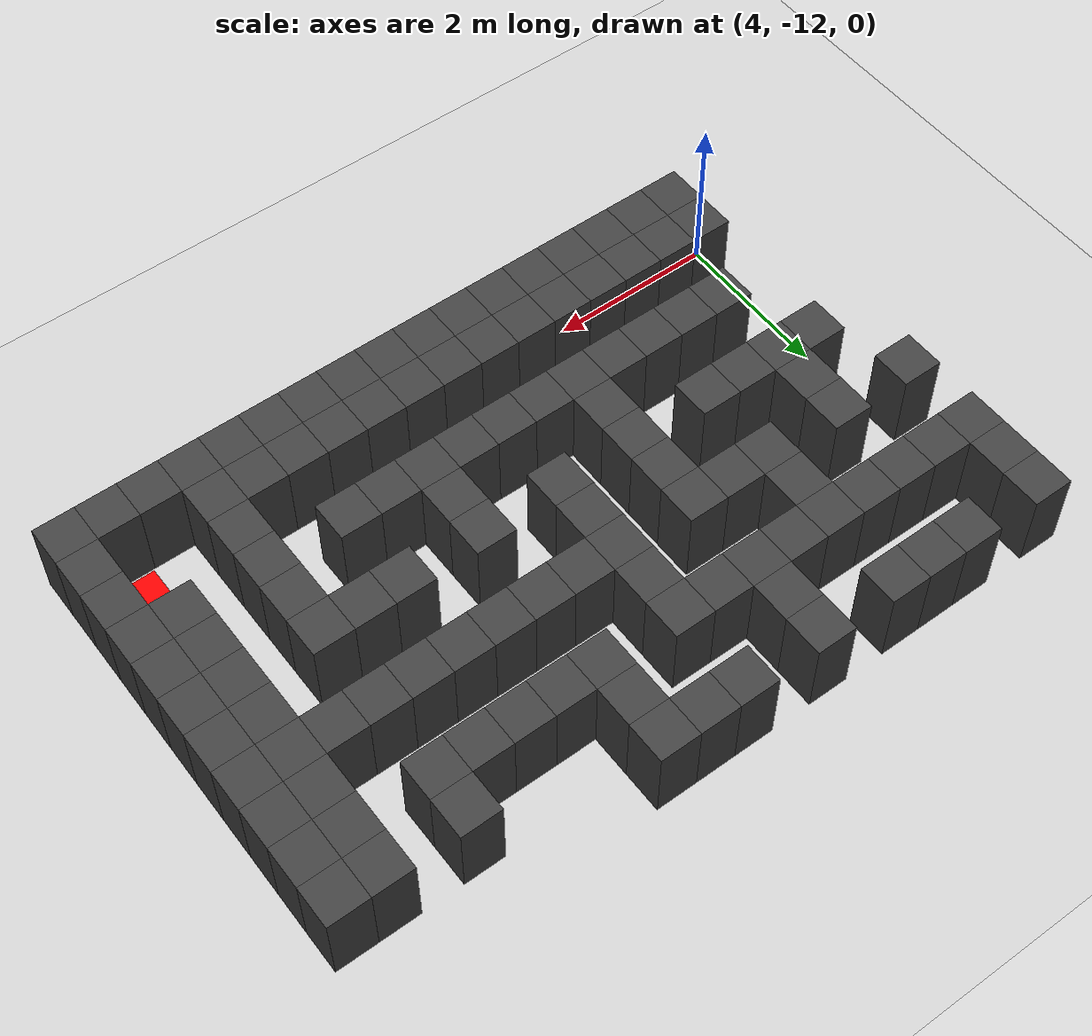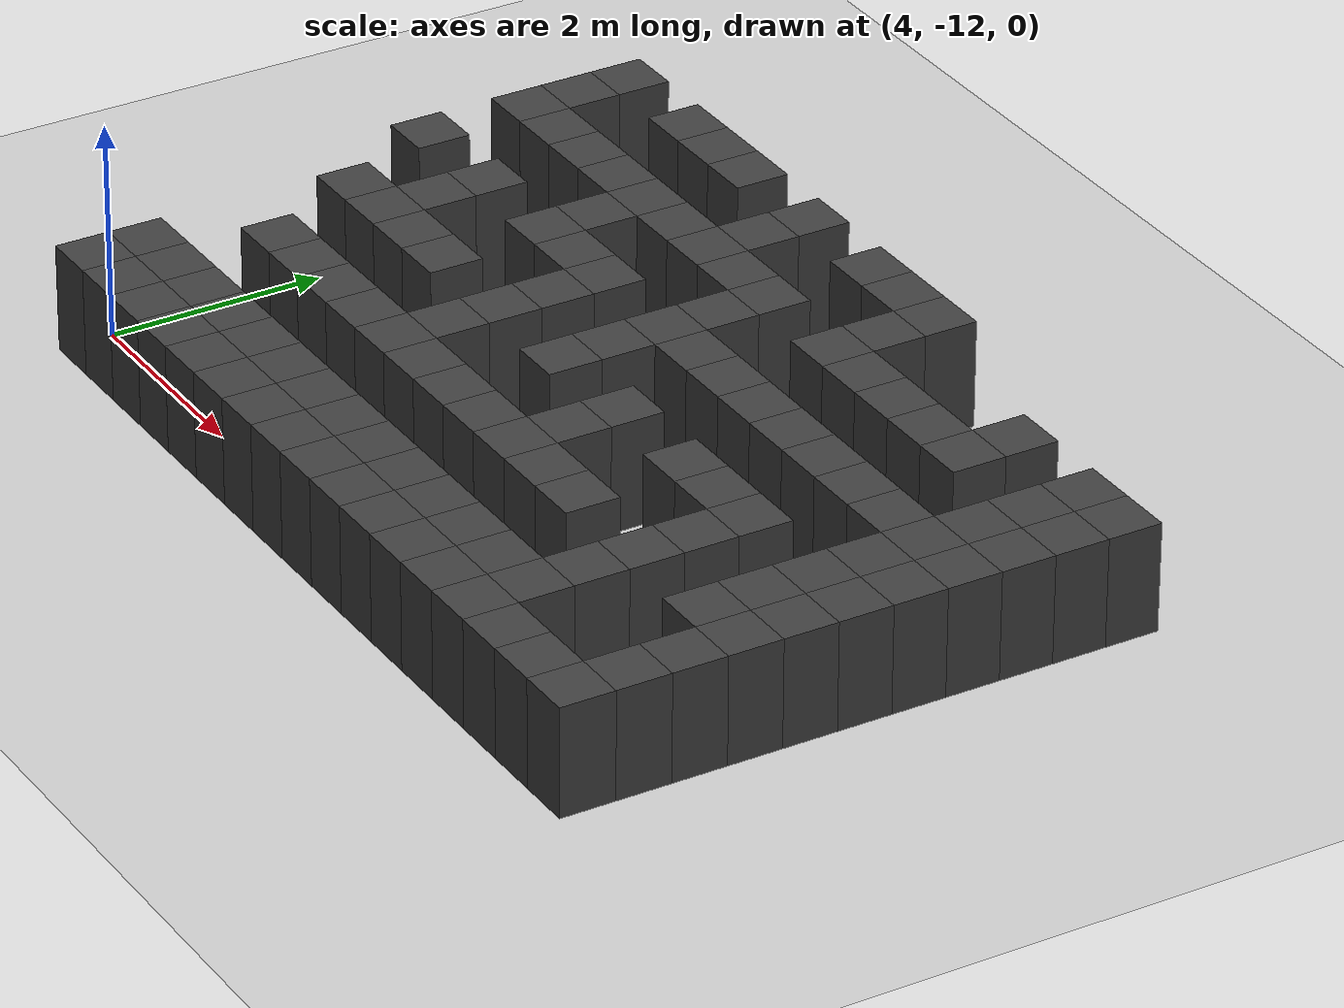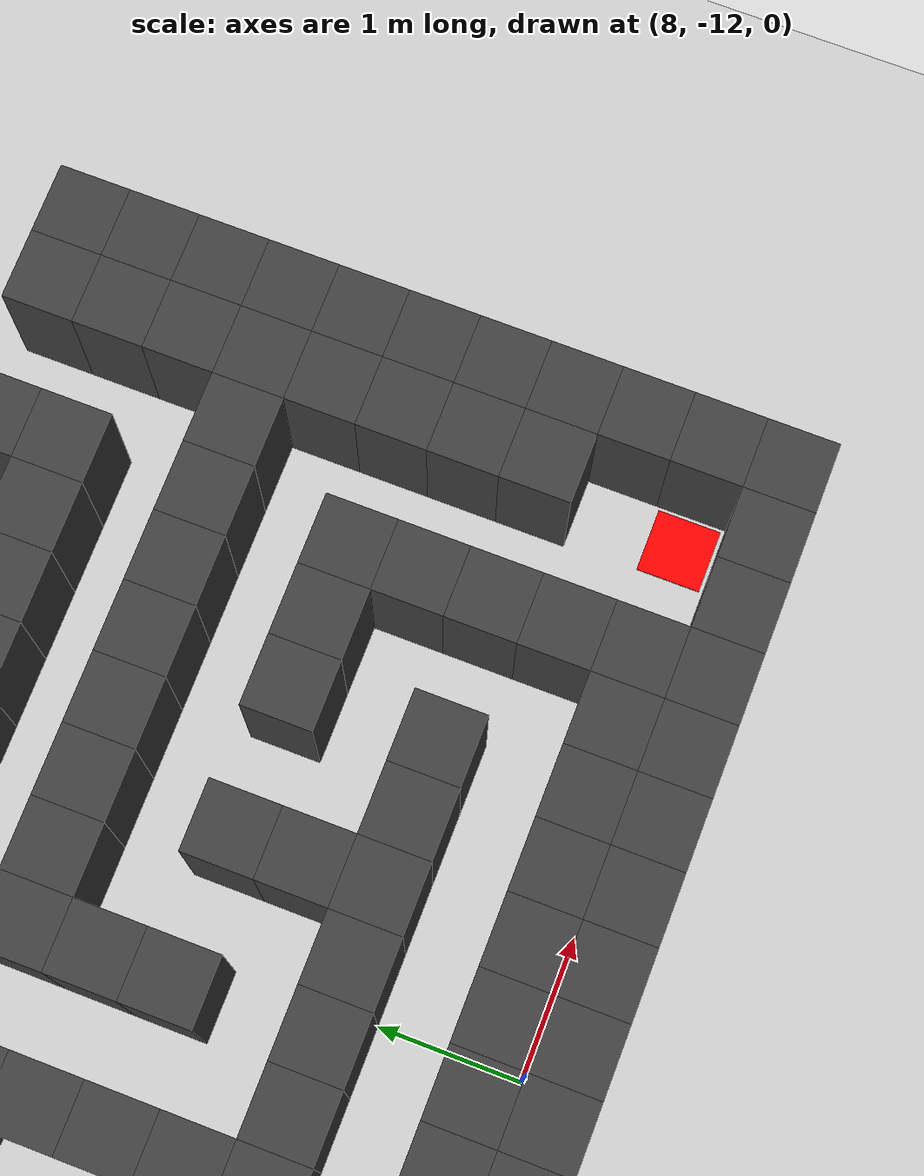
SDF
<sdf version="1.7">
 <world name="map_19217">
  <model name="ground_plane">
   <static>true</static>
   <link name="link">
    <collision name="collision">
     <geometry><plane><normal>0 0 1</normal><size>200 200</size></plane></geometry>
    </collision>
    <visual name="visual">
     <geometry><plane><normal>0 0 1</normal><size>200 200</size></plane></geometry>
     <material><ambient>0.8 0.8 0.8 1</ambient><diffuse>0.8 0.8 0.8 1</diffuse></material>
    </visual>
   </link>
  </model>
  <model name="maze_environment">
   <static>true</static>
   <link name="wall_994">
    <pose>3.750 -6.750 0.500 0 0 0</pose>
    <collision name="col"><geometry><box><size>0.5 0.5 1.0</size></box></geometry></collision>
    <visual name="vis">
     <geometry><box><size>0.5 0.5 1.0</size></box></geometry>
     <material><ambient>0.15 0.15 0.15 1</ambient><diffuse>0.25 0.25 0.25 1</diffuse></material>
    </visual>
   </link>
   <link name="wall_995">
    <pose>4.750 -6.750 0.500 0 0 0</pose>
    <collision name="col"><geometry><box><size>0.5 0.5 1.0</size></box></geometry></collision>
    <visual name="vis">
     <geometry><box><size>0.5 0.5 1.0</size></box></geometry>
     <material><ambient>0.15 0.15 0.15 1</ambient><diffuse>0.25 0.25 0.25 1</diffuse></material>
    </visual>
   </link>
   <link name="wall_996">
    <pose>5.250 -6.750 0.500 0 0 0</pose>
    <collision name="col"><geometry><box><size>0.5 0.5 1.0</size></box></geometry></collision>
    <visual name="vis">
     <geometry><box><size>0.5 0.5 1.0</size></box></geometry>
     <material><ambient>0.15 0.15 0.15 1</ambient><diffuse>0.25 0.25 0.25 1</diffuse></material>
    </visual>
   </link>
   <link name="wall_997">
    <pose>5.750 -6.750 0.500 0 0 0</pose>
    <collision name="col"><geometry><box><size>0.5 0.5 1.0</size></box></geometry></collision>
    <visual name="vis">
     <geometry><box><size>0.5 0.5 1.0</size></box></geometry>
     <material><ambient>0.15 0.15 0.15 1</ambient><diffuse>0.25 0.25 0.25 1</diffuse></material>
    </visual>
   </link>
   <link name="wall_998">
    <pose>6.750 -6.750 0.500 0 0 0</pose>
    <collision name="col"><geometry><box><size>0.5 0.5 1.0</size></box></geometry></collision>
    <visual name="vis">
     <geometry><box><size>0.5 0.5 1.0</size></box></geometry>
     <material><ambient>0.15 0.15 0.15 1</ambient><diffuse>0.25 0.25 0.25 1</diffuse></material>
    </visual>
   </link>
   <link name="wall_999">
    <pose>7.750 -6.750 0.500 0 0 0</pose>
    <collision name="col"><geometry><box><size>0.5 0.5 1.0</size></box></geometry></collision>
    <visual name="vis">
     <geometry><box><size>0.5 0.5 1.0</size></box></geometry>
     <material><ambient>0.15 0.15 0.15 1</ambient><diffuse>0.25 0.25 0.25 1</diffuse></material>
    </visual>
   </link>
   <link name="wall_1000">
    <pose>8.250 -6.750 0.500 0 0 0</pose>
    <collision name="col"><geometry><box><size>0.5 0.5 1.0</size></box></geometry></collision>
    <visual name="vis">
     <geometry><box><size>0.5 0.5 1.0</size></box></geometry>
     <material><ambient>0.15 0.15 0.15 1</ambient><diffuse>0.25 0.25 0.25 1</diffuse></material>
    </visual>
   </link>
   <link name="wall_1001">
    <pose>8.750 -6.750 0.500 0 0 0</pose>
    <collision name="col"><geometry><box><size>0.5 0.5 1.0</size></box></geometry></collision>
    <visual name="vis">
     <geometry><box><size>0.5 0.5 1.0</size></box></geometry>
     <material><ambient>0.15 0.15 0.15 1</ambient><diffuse>0.25 0.25 0.25 1</diffuse></material>
    </visual>
   </link>
   <link name="wall_1017">
    <pose>3.750 -7.250 0.500 0 0 0</pose>
    <collision name="col"><geometry><box><size>0.5 0.5 1.0</size></box></geometry></collision>
    <visual name="vis">
     <geometry><box><size>0.5 0.5 1.0</size></box></geometry>
     <material><ambient>0.15 0.15 0.15 1</ambient><diffuse>0.25 0.25 0.25 1</diffuse></material>
    </visual>
   </link>
   <link name="wall_1018">
    <pose>6.750 -7.250 0.500 0 0 0</pose>
    <collision name="col"><geometry><box><size>0.5 0.5 1.0</size></box></geometry></collision>
    <visual name="vis">
     <geometry><box><size>0.5 0.5 1.0</size></box></geometry>
     <material><ambient>0.15 0.15 0.15 1</ambient><diffuse>0.25 0.25 0.25 1</diffuse></material>
    </visual>
   </link>
   <link name="wall_1019">
    <pose>8.750 -7.250 0.500 0 0 0</pose>
    <collision name="col"><geometry><box><size>0.5 0.5 1.0</size></box></geometry></collision>
    <visual name="vis">
     <geometry><box><size>0.5 0.5 1.0</size></box></geometry>
     <material><ambient>0.15 0.15 0.15 1</ambient><diffuse>0.25 0.25 0.25 1</diffuse></material>
    </visual>
   </link>
   <link name="wall_1020">
    <pose>10.750 -7.250 0.500 0 0 0</pose>
    <collision name="col"><geometry><box><size>0.5 0.5 1.0</size></box></geometry></collision>
    <visual name="vis">
     <geometry><box><size>0.5 0.5 1.0</size></box></geometry>
     <material><ambient>0.15 0.15 0.15 1</ambient><diffuse>0.25 0.25 0.25 1</diffuse></material>
    </visual>
   </link>
   <link name="wall_1021">
    <pose>11.750 -7.250 0.500 0 0 0</pose>
    <collision name="col"><geometry><box><size>0.5 0.5 1.0</size></box></geometry></collision>
    <visual name="vis">
     <geometry><box><size>0.5 0.5 1.0</size></box></geometry>
     <material><ambient>0.15 0.15 0.15 1</ambient><diffuse>0.25 0.25 0.25 1</diffuse></material>
    </visual>
   </link>
   <link name="wall_1022">
    <pose>12.250 -7.250 0.500 0 0 0</pose>
    <collision name="col"><geometry><box><size>0.5 0.5 1.0</size></box></geometry></collision>
    <visual name="vis">
     <geometry><box><size>0.5 0.5 1.0</size></box></geometry>
     <material><ambient>0.15 0.15 0.15 1</ambient><diffuse>0.25 0.25 0.25 1</diffuse></material>
    </visual>
   </link>
   <link name="wall_1044">
    <pose>3.750 -7.750 0.500 0 0 0</pose>
    <collision name="col"><geometry><box><size>0.5 0.5 1.0</size></box></geometry></collision>
    <visual name="vis">
     <geometry><box><size>0.5 0.5 1.0</size></box></geometry>
     <material><ambient>0.15 0.15 0.15 1</ambient><diffuse>0.25 0.25 0.25 1</diffuse></material>
    </visual>
   </link>
   <link name="wall_1045">
    <pose>4.250 -7.750 0.500 0 0 0</pose>
    <collision name="col"><geometry><box><size>0.5 0.5 1.0</size></box></geometry></collision>
    <visual name="vis">
     <geometry><box><size>0.5 0.5 1.0</size></box></geometry>
     <material><ambient>0.15 0.15 0.15 1</ambient><diffuse>0.25 0.25 0.25 1</diffuse></material>
    </visual>
   </link>
   <link name="wall_1046">
    <pose>4.750 -7.750 0.500 0 0 0</pose>
    <collision name="col"><geometry><box><size>0.5 0.5 1.0</size></box></geometry></collision>
    <visual name="vis">
     <geometry><box><size>0.5 0.5 1.0</size></box></geometry>
     <material><ambient>0.15 0.15 0.15 1</ambient><diffuse>0.25 0.25 0.25 1</diffuse></material>
    </visual>
   </link>
   <link name="wall_1047">
    <pose>5.250 -7.750 0.500 0 0 0</pose>
    <collision name="col"><geometry><box><size>0.5 0.5 1.0</size></box></geometry></collision>
    <visual name="vis">
     <geometry><box><size>0.5 0.5 1.0</size></box></geometry>
     <material><ambient>0.15 0.15 0.15 1</ambient><diffuse>0.25 0.25 0.25 1</diffuse></material>
    </visual>
   </link>
   <link name="wall_1048">
    <pose>5.750 -7.750 0.500 0 0 0</pose>
    <collision name="col"><geometry><box><size>0.5 0.5 1.0</size></box></geometry></collision>
    <visual name="vis">
     <geometry><box><size>0.5 0.5 1.0</size></box></geometry>
     <material><ambient>0.15 0.15 0.15 1</ambient><diffuse>0.25 0.25 0.25 1</diffuse></material>
    </visual>
   </link>
   <link name="wall_1049">
    <pose>6.250 -7.750 0.500 0 0 0</pose>
    <collision name="col"><geometry><box><size>0.5 0.5 1.0</size></box></geometry></collision>
    <visual name="vis">
     <geometry><box><size>0.5 0.5 1.0</size></box></geometry>
     <material><ambient>0.15 0.15 0.15 1</ambient><diffuse>0.25 0.25 0.25 1</diffuse></material>
    </visual>
   </link>
   <link name="wall_1050">
    <pose>6.750 -7.750 0.500 0 0 0</pose>
    <collision name="col"><geometry><box><size>0.5 0.5 1.0</size></box></geometry></collision>
    <visual name="vis">
     <geometry><box><size>0.5 0.5 1.0</size></box></geometry>
     <material><ambient>0.15 0.15 0.15 1</ambient><diffuse>0.25 0.25 0.25 1</diffuse></material>
    </visual>
   </link>
   <link name="wall_1051">
    <pose>7.250 -7.750 0.500 0 0 0</pose>
    <collision name="col"><geometry><box><size>0.5 0.5 1.0</size></box></geometry></collision>
    <visual name="vis">
     <geometry><box><size>0.5 0.5 1.0</size></box></geometry>
     <material><ambient>0.15 0.15 0.15 1</ambient><diffuse>0.25 0.25 0.25 1</diffuse></material>
    </visual>
   </link>
   <link name="wall_1052">
    <pose>7.750 -7.750 0.500 0 0 0</pose>
    <collision name="col"><geometry><box><size>0.5 0.5 1.0</size></box></geometry></collision>
    <visual name="vis">
     <geometry><box><size>0.5 0.5 1.0</size></box></geometry>
     <material><ambient>0.15 0.15 0.15 1</ambient><diffuse>0.25 0.25 0.25 1</diffuse></material>
    </visual>
   </link>
   <link name="wall_1053">
    <pose>8.750 -7.750 0.500 0 0 0</pose>
    <collision name="col"><geometry><box><size>0.5 0.5 1.0</size></box></geometry></collision>
    <visual name="vis">
     <geometry><box><size>0.5 0.5 1.0</size></box></geometry>
     <material><ambient>0.15 0.15 0.15 1</ambient><diffuse>0.25 0.25 0.25 1</diffuse></material>
    </visual>
   </link>
   <link name="wall_1054">
    <pose>9.250 -7.750 0.500 0 0 0</pose>
    <collision name="col"><geometry><box><size>0.5 0.5 1.0</size></box></geometry></collision>
    <visual name="vis">
     <geometry><box><size>0.5 0.5 1.0</size></box></geometry>
     <material><ambient>0.15 0.15 0.15 1</ambient><diffuse>0.25 0.25 0.25 1</diffuse></material>
    </visual>
   </link>
   <link name="wall_1055">
    <pose>9.750 -7.750 0.500 0 0 0</pose>
    <collision name="col"><geometry><box><size>0.5 0.5 1.0</size></box></geometry></collision>
    <visual name="vis">
     <geometry><box><size>0.5 0.5 1.0</size></box></geometry>
     <material><ambient>0.15 0.15 0.15 1</ambient><diffuse>0.25 0.25 0.25 1</diffuse></material>
    </visual>
   </link>
   <link name="wall_1056">
    <pose>10.250 -7.750 0.500 0 0 0</pose>
    <collision name="col"><geometry><box><size>0.5 0.5 1.0</size></box></geometry></collision>
    <visual name="vis">
     <geometry><box><size>0.5 0.5 1.0</size></box></geometry>
     <material><ambient>0.15 0.15 0.15 1</ambient><diffuse>0.25 0.25 0.25 1</diffuse></material>
    </visual>
   </link>
   <link name="wall_1057">
    <pose>10.750 -7.750 0.500 0 0 0</pose>
    <collision name="col"><geometry><box><size>0.5 0.5 1.0</size></box></geometry></collision>
    <visual name="vis">
     <geometry><box><size>0.5 0.5 1.0</size></box></geometry>
     <material><ambient>0.15 0.15 0.15 1</ambient><diffuse>0.25 0.25 0.25 1</diffuse></material>
    </visual>
   </link>
   <link name="wall_1058">
    <pose>11.750 -7.750 0.500 0 0 0</pose>
    <collision name="col"><geometry><box><size>0.5 0.5 1.0</size></box></geometry></collision>
    <visual name="vis">
     <geometry><box><size>0.5 0.5 1.0</size></box></geometry>
     <material><ambient>0.15 0.15 0.15 1</ambient><diffuse>0.25 0.25 0.25 1</diffuse></material>
    </visual>
   </link>
   <link name="wall_1059">
    <pose>12.250 -7.750 0.500 0 0 0</pose>
    <collision name="col"><geometry><box><size>0.5 0.5 1.0</size></box></geometry></collision>
    <visual name="vis">
     <geometry><box><size>0.5 0.5 1.0</size></box></geometry>
     <material><ambient>0.15 0.15 0.15 1</ambient><diffuse>0.25 0.25 0.25 1</diffuse></material>
    </visual>
   </link>
   <link name="wall_1068">
    <pose>5.750 -8.250 0.500 0 0 0</pose>
    <collision name="col"><geometry><box><size>0.5 0.5 1.0</size></box></geometry></collision>
    <visual name="vis">
     <geometry><box><size>0.5 0.5 1.0</size></box></geometry>
     <material><ambient>0.15 0.15 0.15 1</ambient><diffuse>0.25 0.25 0.25 1</diffuse></material>
    </visual>
   </link>
   <link name="wall_1069">
    <pose>7.750 -8.250 0.500 0 0 0</pose>
    <collision name="col"><geometry><box><size>0.5 0.5 1.0</size></box></geometry></collision>
    <visual name="vis">
     <geometry><box><size>0.5 0.5 1.0</size></box></geometry>
     <material><ambient>0.15 0.15 0.15 1</ambient><diffuse>0.25 0.25 0.25 1</diffuse></material>
    </visual>
   </link>
   <link name="wall_1070">
    <pose>11.750 -8.250 0.500 0 0 0</pose>
    <collision name="col"><geometry><box><size>0.5 0.5 1.0</size></box></geometry></collision>
    <visual name="vis">
     <geometry><box><size>0.5 0.5 1.0</size></box></geometry>
     <material><ambient>0.15 0.15 0.15 1</ambient><diffuse>0.25 0.25 0.25 1</diffuse></material>
    </visual>
   </link>
   <link name="wall_1071">
    <pose>12.250 -8.250 0.500 0 0 0</pose>
    <collision name="col"><geometry><box><size>0.5 0.5 1.0</size></box></geometry></collision>
    <visual name="vis">
     <geometry><box><size>0.5 0.5 1.0</size></box></geometry>
     <material><ambient>0.15 0.15 0.15 1</ambient><diffuse>0.25 0.25 0.25 1</diffuse></material>
    </visual>
   </link>
   <link name="wall_1098">
    <pose>3.750 -8.750 0.500 0 0 0</pose>
    <collision name="col"><geometry><box><size>0.5 0.5 1.0</size></box></geometry></collision>
    <visual name="vis">
     <geometry><box><size>0.5 0.5 1.0</size></box></geometry>
     <material><ambient>0.15 0.15 0.15 1</ambient><diffuse>0.25 0.25 0.25 1</diffuse></material>
    </visual>
   </link>
   <link name="wall_1099">
    <pose>4.750 -8.750 0.500 0 0 0</pose>
    <collision name="col"><geometry><box><size>0.5 0.5 1.0</size></box></geometry></collision>
    <visual name="vis">
     <geometry><box><size>0.5 0.5 1.0</size></box></geometry>
     <material><ambient>0.15 0.15 0.15 1</ambient><diffuse>0.25 0.25 0.25 1</diffuse></material>
    </visual>
   </link>
   <link name="wall_1100">
    <pose>5.750 -8.750 0.500 0 0 0</pose>
    <collision name="col"><geometry><box><size>0.5 0.5 1.0</size></box></geometry></collision>
    <visual name="vis">
     <geometry><box><size>0.5 0.5 1.0</size></box></geometry>
     <material><ambient>0.15 0.15 0.15 1</ambient><diffuse>0.25 0.25 0.25 1</diffuse></material>
    </visual>
   </link>
   <link name="wall_1101">
    <pose>6.250 -8.750 0.500 0 0 0</pose>
    <collision name="col"><geometry><box><size>0.5 0.5 1.0</size></box></geometry></collision>
    <visual name="vis">
     <geometry><box><size>0.5 0.5 1.0</size></box></geometry>
     <material><ambient>0.15 0.15 0.15 1</ambient><diffuse>0.25 0.25 0.25 1</diffuse></material>
    </visual>
   </link>
   <link name="wall_1102">
    <pose>6.750 -8.750 0.500 0 0 0</pose>
    <collision name="col"><geometry><box><size>0.5 0.5 1.0</size></box></geometry></collision>
    <visual name="vis">
     <geometry><box><size>0.5 0.5 1.0</size></box></geometry>
     <material><ambient>0.15 0.15 0.15 1</ambient><diffuse>0.25 0.25 0.25 1</diffuse></material>
    </visual>
   </link>
   <link name="wall_1103">
    <pose>7.750 -8.750 0.500 0 0 0</pose>
    <collision name="col"><geometry><box><size>0.5 0.5 1.0</size></box></geometry></collision>
    <visual name="vis">
     <geometry><box><size>0.5 0.5 1.0</size></box></geometry>
     <material><ambient>0.15 0.15 0.15 1</ambient><diffuse>0.25 0.25 0.25 1</diffuse></material>
    </visual>
   </link>
   <link name="wall_1104">
    <pose>8.250 -8.750 0.500 0 0 0</pose>
    <collision name="col"><geometry><box><size>0.5 0.5 1.0</size></box></geometry></collision>
    <visual name="vis">
     <geometry><box><size>0.5 0.5 1.0</size></box></geometry>
     <material><ambient>0.15 0.15 0.15 1</ambient><diffuse>0.25 0.25 0.25 1</diffuse></material>
    </visual>
   </link>
   <link name="wall_1105">
    <pose>8.750 -8.750 0.500 0 0 0</pose>
    <collision name="col"><geometry><box><size>0.5 0.5 1.0</size></box></geometry></collision>
    <visual name="vis">
     <geometry><box><size>0.5 0.5 1.0</size></box></geometry>
     <material><ambient>0.15 0.15 0.15 1</ambient><diffuse>0.25 0.25 0.25 1</diffuse></material>
    </visual>
   </link>
   <link name="wall_1106">
    <pose>9.250 -8.750 0.500 0 0 0</pose>
    <collision name="col"><geometry><box><size>0.5 0.5 1.0</size></box></geometry></collision>
    <visual name="vis">
     <geometry><box><size>0.5 0.5 1.0</size></box></geometry>
     <material><ambient>0.15 0.15 0.15 1</ambient><diffuse>0.25 0.25 0.25 1</diffuse></material>
    </visual>
   </link>
   <link name="wall_1107">
    <pose>9.750 -8.750 0.500 0 0 0</pose>
    <collision name="col"><geometry><box><size>0.5 0.5 1.0</size></box></geometry></collision>
    <visual name="vis">
     <geometry><box><size>0.5 0.5 1.0</size></box></geometry>
     <material><ambient>0.15 0.15 0.15 1</ambient><diffuse>0.25 0.25 0.25 1</diffuse></material>
    </visual>
   </link>
   <link name="wall_1108">
    <pose>10.250 -8.750 0.500 0 0 0</pose>
    <collision name="col"><geometry><box><size>0.5 0.5 1.0</size></box></geometry></collision>
    <visual name="vis">
     <geometry><box><size>0.5 0.5 1.0</size></box></geometry>
     <material><ambient>0.15 0.15 0.15 1</ambient><diffuse>0.25 0.25 0.25 1</diffuse></material>
    </visual>
   </link>
   <link name="wall_1109">
    <pose>10.750 -8.750 0.500 0 0 0</pose>
    <collision name="col"><geometry><box><size>0.5 0.5 1.0</size></box></geometry></collision>
    <visual name="vis">
     <geometry><box><size>0.5 0.5 1.0</size></box></geometry>
     <material><ambient>0.15 0.15 0.15 1</ambient><diffuse>0.25 0.25 0.25 1</diffuse></material>
    </visual>
   </link>
   <link name="wall_1110">
    <pose>11.250 -8.750 0.500 0 0 0</pose>
    <collision name="col"><geometry><box><size>0.5 0.5 1.0</size></box></geometry></collision>
    <visual name="vis">
     <geometry><box><size>0.5 0.5 1.0</size></box></geometry>
     <material><ambient>0.15 0.15 0.15 1</ambient><diffuse>0.25 0.25 0.25 1</diffuse></material>
    </visual>
   </link>
   <link name="wall_1111">
    <pose>11.750 -8.750 0.500 0 0 0</pose>
    <collision name="col"><geometry><box><size>0.5 0.5 1.0</size></box></geometry></collision>
    <visual name="vis">
     <geometry><box><size>0.5 0.5 1.0</size></box></geometry>
     <material><ambient>0.15 0.15 0.15 1</ambient><diffuse>0.25 0.25 0.25 1</diffuse></material>
    </visual>
   </link>
   <link name="wall_1112">
    <pose>12.250 -8.750 0.500 0 0 0</pose>
    <collision name="col"><geometry><box><size>0.5 0.5 1.0</size></box></geometry></collision>
    <visual name="vis">
     <geometry><box><size>0.5 0.5 1.0</size></box></geometry>
     <material><ambient>0.15 0.15 0.15 1</ambient><diffuse>0.25 0.25 0.25 1</diffuse></material>
    </visual>
   </link>
   <link name="wall_1121">
    <pose>4.750 -9.250 0.500 0 0 0</pose>
    <collision name="col"><geometry><box><size>0.5 0.5 1.0</size></box></geometry></collision>
    <visual name="vis">
     <geometry><box><size>0.5 0.5 1.0</size></box></geometry>
     <material><ambient>0.15 0.15 0.15 1</ambient><diffuse>0.25 0.25 0.25 1</diffuse></material>
    </visual>
   </link>
   <link name="wall_1122">
    <pose>6.750 -9.250 0.500 0 0 0</pose>
    <collision name="col"><geometry><box><size>0.5 0.5 1.0</size></box></geometry></collision>
    <visual name="vis">
     <geometry><box><size>0.5 0.5 1.0</size></box></geometry>
     <material><ambient>0.15 0.15 0.15 1</ambient><diffuse>0.25 0.25 0.25 1</diffuse></material>
    </visual>
   </link>
   <link name="wall_1123">
    <pose>7.750 -9.250 0.500 0 0 0</pose>
    <collision name="col"><geometry><box><size>0.5 0.5 1.0</size></box></geometry></collision>
    <visual name="vis">
     <geometry><box><size>0.5 0.5 1.0</size></box></geometry>
     <material><ambient>0.15 0.15 0.15 1</ambient><diffuse>0.25 0.25 0.25 1</diffuse></material>
    </visual>
   </link>
   <link name="wall_1124">
    <pose>11.750 -9.250 0.500 0 0 0</pose>
    <collision name="col"><geometry><box><size>0.5 0.5 1.0</size></box></geometry></collision>
    <visual name="vis">
     <geometry><box><size>0.5 0.5 1.0</size></box></geometry>
     <material><ambient>0.15 0.15 0.15 1</ambient><diffuse>0.25 0.25 0.25 1</diffuse></material>
    </visual>
   </link>
   <link name="wall_1125">
    <pose>12.250 -9.250 0.500 0 0 0</pose>
    <collision name="col"><geometry><box><size>0.5 0.5 1.0</size></box></geometry></collision>
    <visual name="vis">
     <geometry><box><size>0.5 0.5 1.0</size></box></geometry>
     <material><ambient>0.15 0.15 0.15 1</ambient><diffuse>0.25 0.25 0.25 1</diffuse></material>
    </visual>
   </link>
   <link name="wall_1151">
    <pose>4.250 -9.750 0.500 0 0 0</pose>
    <collision name="col"><geometry><box><size>0.5 0.5 1.0</size></box></geometry></collision>
    <visual name="vis">
     <geometry><box><size>0.5 0.5 1.0</size></box></geometry>
     <material><ambient>0.15 0.15 0.15 1</ambient><diffuse>0.25 0.25 0.25 1</diffuse></material>
    </visual>
   </link>
   <link name="wall_1152">
    <pose>4.750 -9.750 0.500 0 0 0</pose>
    <collision name="col"><geometry><box><size>0.5 0.5 1.0</size></box></geometry></collision>
    <visual name="vis">
     <geometry><box><size>0.5 0.5 1.0</size></box></geometry>
     <material><ambient>0.15 0.15 0.15 1</ambient><diffuse>0.25 0.25 0.25 1</diffuse></material>
    </visual>
   </link>
   <link name="wall_1153">
    <pose>5.250 -9.750 0.500 0 0 0</pose>
    <collision name="col"><geometry><box><size>0.5 0.5 1.0</size></box></geometry></collision>
    <visual name="vis">
     <geometry><box><size>0.5 0.5 1.0</size></box></geometry>
     <material><ambient>0.15 0.15 0.15 1</ambient><diffuse>0.25 0.25 0.25 1</diffuse></material>
    </visual>
   </link>
   <link name="wall_1154">
    <pose>5.750 -9.750 0.500 0 0 0</pose>
    <collision name="col"><geometry><box><size>0.5 0.5 1.0</size></box></geometry></collision>
    <visual name="vis">
     <geometry><box><size>0.5 0.5 1.0</size></box></geometry>
     <material><ambient>0.15 0.15 0.15 1</ambient><diffuse>0.25 0.25 0.25 1</diffuse></material>
    </visual>
   </link>
   <link name="wall_1155">
    <pose>6.750 -9.750 0.500 0 0 0</pose>
    <collision name="col"><geometry><box><size>0.5 0.5 1.0</size></box></geometry></collision>
    <visual name="vis">
     <geometry><box><size>0.5 0.5 1.0</size></box></geometry>
     <material><ambient>0.15 0.15 0.15 1</ambient><diffuse>0.25 0.25 0.25 1</diffuse></material>
    </visual>
   </link>
   <link name="wall_1156">
    <pose>7.750 -9.750 0.500 0 0 0</pose>
    <collision name="col"><geometry><box><size>0.5 0.5 1.0</size></box></geometry></collision>
    <visual name="vis">
     <geometry><box><size>0.5 0.5 1.0</size></box></geometry>
     <material><ambient>0.15 0.15 0.15 1</ambient><diffuse>0.25 0.25 0.25 1</diffuse></material>
    </visual>
   </link>
   <link name="wall_1157">
    <pose>8.750 -9.750 0.500 0 0 0</pose>
    <collision name="col"><geometry><box><size>0.5 0.5 1.0</size></box></geometry></collision>
    <visual name="vis">
     <geometry><box><size>0.5 0.5 1.0</size></box></geometry>
     <material><ambient>0.15 0.15 0.15 1</ambient><diffuse>0.25 0.25 0.25 1</diffuse></material>
    </visual>
   </link>
   <link name="wall_1158">
    <pose>9.750 -9.750 0.500 0 0 0</pose>
    <collision name="col"><geometry><box><size>0.5 0.5 1.0</size></box></geometry></collision>
    <visual name="vis">
     <geometry><box><size>0.5 0.5 1.0</size></box></geometry>
     <material><ambient>0.15 0.15 0.15 1</ambient><diffuse>0.25 0.25 0.25 1</diffuse></material>
    </visual>
   </link>
   <link name="wall_1159">
    <pose>10.250 -9.750 0.500 0 0 0</pose>
    <collision name="col"><geometry><box><size>0.5 0.5 1.0</size></box></geometry></collision>
    <visual name="vis">
     <geometry><box><size>0.5 0.5 1.0</size></box></geometry>
     <material><ambient>0.15 0.15 0.15 1</ambient><diffuse>0.25 0.25 0.25 1</diffuse></material>
    </visual>
   </link>
   <link name="wall_1160">
    <pose>10.750 -9.750 0.500 0 0 0</pose>
    <collision name="col"><geometry><box><size>0.5 0.5 1.0</size></box></geometry></collision>
    <visual name="vis">
     <geometry><box><size>0.5 0.5 1.0</size></box></geometry>
     <material><ambient>0.15 0.15 0.15 1</ambient><diffuse>0.25 0.25 0.25 1</diffuse></material>
    </visual>
   </link>
   <link name="wall_1161">
    <pose>11.750 -9.750 0.500 0 0 0</pose>
    <collision name="col"><geometry><box><size>0.5 0.5 1.0</size></box></geometry></collision>
    <visual name="vis">
     <geometry><box><size>0.5 0.5 1.0</size></box></geometry>
     <material><ambient>0.15 0.15 0.15 1</ambient><diffuse>0.25 0.25 0.25 1</diffuse></material>
    </visual>
   </link>
   <link name="wall_1162">
    <pose>12.250 -9.750 0.500 0 0 0</pose>
    <collision name="col"><geometry><box><size>0.5 0.5 1.0</size></box></geometry></collision>
    <visual name="vis">
     <geometry><box><size>0.5 0.5 1.0</size></box></geometry>
     <material><ambient>0.15 0.15 0.15 1</ambient><diffuse>0.25 0.25 0.25 1</diffuse></material>
    </visual>
   </link>
   <link name="wall_1173">
    <pose>6.750 -10.250 0.500 0 0 0</pose>
    <collision name="col"><geometry><box><size>0.5 0.5 1.0</size></box></geometry></collision>
    <visual name="vis">
     <geometry><box><size>0.5 0.5 1.0</size></box></geometry>
     <material><ambient>0.15 0.15 0.15 1</ambient><diffuse>0.25 0.25 0.25 1</diffuse></material>
    </visual>
   </link>
   <link name="wall_1174">
    <pose>8.750 -10.250 0.500 0 0 0</pose>
    <collision name="col"><geometry><box><size>0.5 0.5 1.0</size></box></geometry></collision>
    <visual name="vis">
     <geometry><box><size>0.5 0.5 1.0</size></box></geometry>
     <material><ambient>0.15 0.15 0.15 1</ambient><diffuse>0.25 0.25 0.25 1</diffuse></material>
    </visual>
   </link>
   <link name="wall_1175">
    <pose>10.750 -10.250 0.500 0 0 0</pose>
    <collision name="col"><geometry><box><size>0.5 0.5 1.0</size></box></geometry></collision>
    <visual name="vis">
     <geometry><box><size>0.5 0.5 1.0</size></box></geometry>
     <material><ambient>0.15 0.15 0.15 1</ambient><diffuse>0.25 0.25 0.25 1</diffuse></material>
    </visual>
   </link>
   <link name="wall_1176">
    <pose>11.750 -10.250 0.500 0 0 0</pose>
    <collision name="col"><geometry><box><size>0.5 0.5 1.0</size></box></geometry></collision>
    <visual name="vis">
     <geometry><box><size>0.5 0.5 1.0</size></box></geometry>
     <material><ambient>0.15 0.15 0.15 1</ambient><diffuse>0.25 0.25 0.25 1</diffuse></material>
    </visual>
   </link>
   <link name="wall_1177">
    <pose>12.250 -10.250 0.500 0 0 0</pose>
    <collision name="col"><geometry><box><size>0.5 0.5 1.0</size></box></geometry></collision>
    <visual name="vis">
     <geometry><box><size>0.5 0.5 1.0</size></box></geometry>
     <material><ambient>0.15 0.15 0.15 1</ambient><diffuse>0.25 0.25 0.25 1</diffuse></material>
    </visual>
   </link>
   <link name="wall_1202">
    <pose>4.750 -10.750 0.500 0 0 0</pose>
    <collision name="col"><geometry><box><size>0.5 0.5 1.0</size></box></geometry></collision>
    <visual name="vis">
     <geometry><box><size>0.5 0.5 1.0</size></box></geometry>
     <material><ambient>0.15 0.15 0.15 1</ambient><diffuse>0.25 0.25 0.25 1</diffuse></material>
    </visual>
   </link>
   <link name="wall_1203">
    <pose>5.250 -10.750 0.500 0 0 0</pose>
    <collision name="col"><geometry><box><size>0.5 0.5 1.0</size></box></geometry></collision>
    <visual name="vis">
     <geometry><box><size>0.5 0.5 1.0</size></box></geometry>
     <material><ambient>0.15 0.15 0.15 1</ambient><diffuse>0.25 0.25 0.25 1</diffuse></material>
    </visual>
   </link>
   <link name="wall_1204">
    <pose>5.750 -10.750 0.500 0 0 0</pose>
    <collision name="col"><geometry><box><size>0.5 0.5 1.0</size></box></geometry></collision>
    <visual name="vis">
     <geometry><box><size>0.5 0.5 1.0</size></box></geometry>
     <material><ambient>0.15 0.15 0.15 1</ambient><diffuse>0.25 0.25 0.25 1</diffuse></material>
    </visual>
   </link>
   <link name="wall_1205">
    <pose>6.250 -10.750 0.500 0 0 0</pose>
    <collision name="col"><geometry><box><size>0.5 0.5 1.0</size></box></geometry></collision>
    <visual name="vis">
     <geometry><box><size>0.5 0.5 1.0</size></box></geometry>
     <material><ambient>0.15 0.15 0.15 1</ambient><diffuse>0.25 0.25 0.25 1</diffuse></material>
    </visual>
   </link>
   <link name="wall_1206">
    <pose>6.750 -10.750 0.500 0 0 0</pose>
    <collision name="col"><geometry><box><size>0.5 0.5 1.0</size></box></geometry></collision>
    <visual name="vis">
     <geometry><box><size>0.5 0.5 1.0</size></box></geometry>
     <material><ambient>0.15 0.15 0.15 1</ambient><diffuse>0.25 0.25 0.25 1</diffuse></material>
    </visual>
   </link>
   <link name="wall_1207">
    <pose>7.250 -10.750 0.500 0 0 0</pose>
    <collision name="col"><geometry><box><size>0.5 0.5 1.0</size></box></geometry></collision>
    <visual name="vis">
     <geometry><box><size>0.5 0.5 1.0</size></box></geometry>
     <material><ambient>0.15 0.15 0.15 1</ambient><diffuse>0.25 0.25 0.25 1</diffuse></material>
    </visual>
   </link>
   <link name="wall_1208">
    <pose>7.750 -10.750 0.500 0 0 0</pose>
    <collision name="col"><geometry><box><size>0.5 0.5 1.0</size></box></geometry></collision>
    <visual name="vis">
     <geometry><box><size>0.5 0.5 1.0</size></box></geometry>
     <material><ambient>0.15 0.15 0.15 1</ambient><diffuse>0.25 0.25 0.25 1</diffuse></material>
    </visual>
   </link>
   <link name="wall_1209">
    <pose>8.250 -10.750 0.500 0 0 0</pose>
    <collision name="col"><geometry><box><size>0.5 0.5 1.0</size></box></geometry></collision>
    <visual name="vis">
     <geometry><box><size>0.5 0.5 1.0</size></box></geometry>
     <material><ambient>0.15 0.15 0.15 1</ambient><diffuse>0.25 0.25 0.25 1</diffuse></material>
    </visual>
   </link>
   <link name="wall_1210">
    <pose>8.750 -10.750 0.500 0 0 0</pose>
    <collision name="col"><geometry><box><size>0.5 0.5 1.0</size></box></geometry></collision>
    <visual name="vis">
     <geometry><box><size>0.5 0.5 1.0</size></box></geometry>
     <material><ambient>0.15 0.15 0.15 1</ambient><diffuse>0.25 0.25 0.25 1</diffuse></material>
    </visual>
   </link>
   <link name="wall_1211">
    <pose>9.250 -10.750 0.500 0 0 0</pose>
    <collision name="col"><geometry><box><size>0.5 0.5 1.0</size></box></geometry></collision>
    <visual name="vis">
     <geometry><box><size>0.5 0.5 1.0</size></box></geometry>
     <material><ambient>0.15 0.15 0.15 1</ambient><diffuse>0.25 0.25 0.25 1</diffuse></material>
    </visual>
   </link>
   <link name="wall_1212">
    <pose>9.750 -10.750 0.500 0 0 0</pose>
    <collision name="col"><geometry><box><size>0.5 0.5 1.0</size></box></geometry></collision>
    <visual name="vis">
     <geometry><box><size>0.5 0.5 1.0</size></box></geometry>
     <material><ambient>0.15 0.15 0.15 1</ambient><diffuse>0.25 0.25 0.25 1</diffuse></material>
    </visual>
   </link>
   <link name="wall_1213">
    <pose>10.750 -10.750 0.500 0 0 0</pose>
    <collision name="col"><geometry><box><size>0.5 0.5 1.0</size></box></geometry></collision>
    <visual name="vis">
     <geometry><box><size>0.5 0.5 1.0</size></box></geometry>
     <material><ambient>0.15 0.15 0.15 1</ambient><diffuse>0.25 0.25 0.25 1</diffuse></material>
    </visual>
   </link>
   <link name="wall_1214">
    <pose>11.750 -10.750 0.500 0 0 0</pose>
    <collision name="col"><geometry><box><size>0.5 0.5 1.0</size></box></geometry></collision>
    <visual name="vis">
     <geometry><box><size>0.5 0.5 1.0</size></box></geometry>
     <material><ambient>0.15 0.15 0.15 1</ambient><diffuse>0.25 0.25 0.25 1</diffuse></material>
    </visual>
   </link>
   <link name="wall_1215">
    <pose>12.250 -10.750 0.500 0 0 0</pose>
    <collision name="col"><geometry><box><size>0.5 0.5 1.0</size></box></geometry></collision>
    <visual name="vis">
     <geometry><box><size>0.5 0.5 1.0</size></box></geometry>
     <material><ambient>0.15 0.15 0.15 1</ambient><diffuse>0.25 0.25 0.25 1</diffuse></material>
    </visual>
   </link>
   <link name="wall_1220">
    <pose>10.750 -11.250 0.500 0 0 0</pose>
    <collision name="col"><geometry><box><size>0.5 0.5 1.0</size></box></geometry></collision>
    <visual name="vis">
     <geometry><box><size>0.5 0.5 1.0</size></box></geometry>
     <material><ambient>0.15 0.15 0.15 1</ambient><diffuse>0.25 0.25 0.25 1</diffuse></material>
    </visual>
   </link>
   <link name="wall_1221">
    <pose>12.250 -11.250 0.500 0 0 0</pose>
    <collision name="col"><geometry><box><size>0.5 0.5 1.0</size></box></geometry></collision>
    <visual name="vis">
     <geometry><box><size>0.5 0.5 1.0</size></box></geometry>
     <material><ambient>0.15 0.15 0.15 1</ambient><diffuse>0.25 0.25 0.25 1</diffuse></material>
    </visual>
   </link>
   <link name="wall_1255">
    <pose>4.250 -11.750 0.500 0 0 0</pose>
    <collision name="col"><geometry><box><size>0.5 0.5 1.0</size></box></geometry></collision>
    <visual name="vis">
     <geometry><box><size>0.5 0.5 1.0</size></box></geometry>
     <material><ambient>0.15 0.15 0.15 1</ambient><diffuse>0.25 0.25 0.25 1</diffuse></material>
    </visual>
   </link>
   <link name="wall_1256">
    <pose>4.750 -11.750 0.500 0 0 0</pose>
    <collision name="col"><geometry><box><size>0.5 0.5 1.0</size></box></geometry></collision>
    <visual name="vis">
     <geometry><box><size>0.5 0.5 1.0</size></box></geometry>
     <material><ambient>0.15 0.15 0.15 1</ambient><diffuse>0.25 0.25 0.25 1</diffuse></material>
    </visual>
   </link>
   <link name="wall_1257">
    <pose>5.250 -11.750 0.500 0 0 0</pose>
    <collision name="col"><geometry><box><size>0.5 0.5 1.0</size></box></geometry></collision>
    <visual name="vis">
     <geometry><box><size>0.5 0.5 1.0</size></box></geometry>
     <material><ambient>0.15 0.15 0.15 1</ambient><diffuse>0.25 0.25 0.25 1</diffuse></material>
    </visual>
   </link>
   <link name="wall_1258">
    <pose>5.750 -11.750 0.500 0 0 0</pose>
    <collision name="col"><geometry><box><size>0.5 0.5 1.0</size></box></geometry></collision>
    <visual name="vis">
     <geometry><box><size>0.5 0.5 1.0</size></box></geometry>
     <material><ambient>0.15 0.15 0.15 1</ambient><diffuse>0.25 0.25 0.25 1</diffuse></material>
    </visual>
   </link>
   <link name="wall_1259">
    <pose>6.250 -11.750 0.500 0 0 0</pose>
    <collision name="col"><geometry><box><size>0.5 0.5 1.0</size></box></geometry></collision>
    <visual name="vis">
     <geometry><box><size>0.5 0.5 1.0</size></box></geometry>
     <material><ambient>0.15 0.15 0.15 1</ambient><diffuse>0.25 0.25 0.25 1</diffuse></material>
    </visual>
   </link>
   <link name="wall_1260">
    <pose>6.750 -11.750 0.500 0 0 0</pose>
    <collision name="col"><geometry><box><size>0.5 0.5 1.0</size></box></geometry></collision>
    <visual name="vis">
     <geometry><box><size>0.5 0.5 1.0</size></box></geometry>
     <material><ambient>0.15 0.15 0.15 1</ambient><diffuse>0.25 0.25 0.25 1</diffuse></material>
    </visual>
   </link>
   <link name="wall_1261">
    <pose>7.250 -11.750 0.500 0 0 0</pose>
    <collision name="col"><geometry><box><size>0.5 0.5 1.0</size></box></geometry></collision>
    <visual name="vis">
     <geometry><box><size>0.5 0.5 1.0</size></box></geometry>
     <material><ambient>0.15 0.15 0.15 1</ambient><diffuse>0.25 0.25 0.25 1</diffuse></material>
    </visual>
   </link>
   <link name="wall_1262">
    <pose>7.750 -11.750 0.500 0 0 0</pose>
    <collision name="col"><geometry><box><size>0.5 0.5 1.0</size></box></geometry></collision>
    <visual name="vis">
     <geometry><box><size>0.5 0.5 1.0</size></box></geometry>
     <material><ambient>0.15 0.15 0.15 1</ambient><diffuse>0.25 0.25 0.25 1</diffuse></material>
    </visual>
   </link>
   <link name="wall_1263">
    <pose>8.250 -11.750 0.500 0 0 0</pose>
    <collision name="col"><geometry><box><size>0.5 0.5 1.0</size></box></geometry></collision>
    <visual name="vis">
     <geometry><box><size>0.5 0.5 1.0</size></box></geometry>
     <material><ambient>0.15 0.15 0.15 1</ambient><diffuse>0.25 0.25 0.25 1</diffuse></material>
    </visual>
   </link>
   <link name="wall_1264">
    <pose>8.750 -11.750 0.500 0 0 0</pose>
    <collision name="col"><geometry><box><size>0.5 0.5 1.0</size></box></geometry></collision>
    <visual name="vis">
     <geometry><box><size>0.5 0.5 1.0</size></box></geometry>
     <material><ambient>0.15 0.15 0.15 1</ambient><diffuse>0.25 0.25 0.25 1</diffuse></material>
    </visual>
   </link>
   <link name="wall_1265">
    <pose>9.250 -11.750 0.500 0 0 0</pose>
    <collision name="col"><geometry><box><size>0.5 0.5 1.0</size></box></geometry></collision>
    <visual name="vis">
     <geometry><box><size>0.5 0.5 1.0</size></box></geometry>
     <material><ambient>0.15 0.15 0.15 1</ambient><diffuse>0.25 0.25 0.25 1</diffuse></material>
    </visual>
   </link>
   <link name="wall_1266">
    <pose>9.750 -11.750 0.500 0 0 0</pose>
    <collision name="col"><geometry><box><size>0.5 0.5 1.0</size></box></geometry></collision>
    <visual name="vis">
     <geometry><box><size>0.5 0.5 1.0</size></box></geometry>
     <material><ambient>0.15 0.15 0.15 1</ambient><diffuse>0.25 0.25 0.25 1</diffuse></material>
    </visual>
   </link>
   <link name="wall_1267">
    <pose>10.250 -11.750 0.500 0 0 0</pose>
    <collision name="col"><geometry><box><size>0.5 0.5 1.0</size></box></geometry></collision>
    <visual name="vis">
     <geometry><box><size>0.5 0.5 1.0</size></box></geometry>
     <material><ambient>0.15 0.15 0.15 1</ambient><diffuse>0.25 0.25 0.25 1</diffuse></material>
    </visual>
   </link>
   <link name="wall_1268">
    <pose>10.750 -11.750 0.500 0 0 0</pose>
    <collision name="col"><geometry><box><size>0.5 0.5 1.0</size></box></geometry></collision>
    <visual name="vis">
     <geometry><box><size>0.5 0.5 1.0</size></box></geometry>
     <material><ambient>0.15 0.15 0.15 1</ambient><diffuse>0.25 0.25 0.25 1</diffuse></material>
    </visual>
   </link>
   <link name="wall_1269">
    <pose>12.250 -11.750 0.500 0 0 0</pose>
    <collision name="col"><geometry><box><size>0.5 0.5 1.0</size></box></geometry></collision>
    <visual name="vis">
     <geometry><box><size>0.5 0.5 1.0</size></box></geometry>
     <material><ambient>0.15 0.15 0.15 1</ambient><diffuse>0.25 0.25 0.25 1</diffuse></material>
    </visual>
   </link>
   <link name="wall_1303">
    <pose>4.250 -12.250 0.500 0 0 0</pose>
    <collision name="col"><geometry><box><size>0.5 0.5 1.0</size></box></geometry></collision>
    <visual name="vis">
     <geometry><box><size>0.5 0.5 1.0</size></box></geometry>
     <material><ambient>0.15 0.15 0.15 1</ambient><diffuse>0.25 0.25 0.25 1</diffuse></material>
    </visual>
   </link>
   <link name="wall_1304">
    <pose>4.750 -12.250 0.500 0 0 0</pose>
    <collision name="col"><geometry><box><size>0.5 0.5 1.0</size></box></geometry></collision>
    <visual name="vis">
     <geometry><box><size>0.5 0.5 1.0</size></box></geometry>
     <material><ambient>0.15 0.15 0.15 1</ambient><diffuse>0.25 0.25 0.25 1</diffuse></material>
    </visual>
   </link>
   <link name="wall_1305">
    <pose>5.250 -12.250 0.500 0 0 0</pose>
    <collision name="col"><geometry><box><size>0.5 0.5 1.0</size></box></geometry></collision>
    <visual name="vis">
     <geometry><box><size>0.5 0.5 1.0</size></box></geometry>
     <material><ambient>0.15 0.15 0.15 1</ambient><diffuse>0.25 0.25 0.25 1</diffuse></material>
    </visual>
   </link>
   <link name="wall_1306">
    <pose>5.750 -12.250 0.500 0 0 0</pose>
    <collision name="col"><geometry><box><size>0.5 0.5 1.0</size></box></geometry></collision>
    <visual name="vis">
     <geometry><box><size>0.5 0.5 1.0</size></box></geometry>
     <material><ambient>0.15 0.15 0.15 1</ambient><diffuse>0.25 0.25 0.25 1</diffuse></material>
    </visual>
   </link>
   <link name="wall_1307">
    <pose>6.250 -12.250 0.500 0 0 0</pose>
    <collision name="col"><geometry><box><size>0.5 0.5 1.0</size></box></geometry></collision>
    <visual name="vis">
     <geometry><box><size>0.5 0.5 1.0</size></box></geometry>
     <material><ambient>0.15 0.15 0.15 1</ambient><diffuse>0.25 0.25 0.25 1</diffuse></material>
    </visual>
   </link>
   <link name="wall_1308">
    <pose>6.750 -12.250 0.500 0 0 0</pose>
    <collision name="col"><geometry><box><size>0.5 0.5 1.0</size></box></geometry></collision>
    <visual name="vis">
     <geometry><box><size>0.5 0.5 1.0</size></box></geometry>
     <material><ambient>0.15 0.15 0.15 1</ambient><diffuse>0.25 0.25 0.25 1</diffuse></material>
    </visual>
   </link>
   <link name="wall_1309">
    <pose>7.250 -12.250 0.500 0 0 0</pose>
    <collision name="col"><geometry><box><size>0.5 0.5 1.0</size></box></geometry></collision>
    <visual name="vis">
     <geometry><box><size>0.5 0.5 1.0</size></box></geometry>
     <material><ambient>0.15 0.15 0.15 1</ambient><diffuse>0.25 0.25 0.25 1</diffuse></material>
    </visual>
   </link>
   <link name="wall_1310">
    <pose>7.750 -12.250 0.500 0 0 0</pose>
    <collision name="col"><geometry><box><size>0.5 0.5 1.0</size></box></geometry></collision>
    <visual name="vis">
     <geometry><box><size>0.5 0.5 1.0</size></box></geometry>
     <material><ambient>0.15 0.15 0.15 1</ambient><diffuse>0.25 0.25 0.25 1</diffuse></material>
    </visual>
   </link>
   <link name="wall_1311">
    <pose>8.250 -12.250 0.500 0 0 0</pose>
    <collision name="col"><geometry><box><size>0.5 0.5 1.0</size></box></geometry></collision>
    <visual name="vis">
     <geometry><box><size>0.5 0.5 1.0</size></box></geometry>
     <material><ambient>0.15 0.15 0.15 1</ambient><diffuse>0.25 0.25 0.25 1</diffuse></material>
    </visual>
   </link>
   <link name="wall_1312">
    <pose>8.750 -12.250 0.500 0 0 0</pose>
    <collision name="col"><geometry><box><size>0.5 0.5 1.0</size></box></geometry></collision>
    <visual name="vis">
     <geometry><box><size>0.5 0.5 1.0</size></box></geometry>
     <material><ambient>0.15 0.15 0.15 1</ambient><diffuse>0.25 0.25 0.25 1</diffuse></material>
    </visual>
   </link>
   <link name="wall_1313">
    <pose>9.250 -12.250 0.500 0 0 0</pose>
    <collision name="col"><geometry><box><size>0.5 0.5 1.0</size></box></geometry></collision>
    <visual name="vis">
     <geometry><box><size>0.5 0.5 1.0</size></box></geometry>
     <material><ambient>0.15 0.15 0.15 1</ambient><diffuse>0.25 0.25 0.25 1</diffuse></material>
    </visual>
   </link>
   <link name="wall_1314">
    <pose>9.750 -12.250 0.500 0 0 0</pose>
    <collision name="col"><geometry><box><size>0.5 0.5 1.0</size></box></geometry></collision>
    <visual name="vis">
     <geometry><box><size>0.5 0.5 1.0</size></box></geometry>
     <material><ambient>0.15 0.15 0.15 1</ambient><diffuse>0.25 0.25 0.25 1</diffuse></material>
    </visual>
   </link>
   <link name="wall_1315">
    <pose>10.250 -12.250 0.500 0 0 0</pose>
    <collision name="col"><geometry><box><size>0.5 0.5 1.0</size></box></geometry></collision>
    <visual name="vis">
     <geometry><box><size>0.5 0.5 1.0</size></box></geometry>
     <material><ambient>0.15 0.15 0.15 1</ambient><diffuse>0.25 0.25 0.25 1</diffuse></material>
    </visual>
   </link>
   <link name="wall_1316">
    <pose>10.750 -12.250 0.500 0 0 0</pose>
    <collision name="col"><geometry><box><size>0.5 0.5 1.0</size></box></geometry></collision>
    <visual name="vis">
     <geometry><box><size>0.5 0.5 1.0</size></box></geometry>
     <material><ambient>0.15 0.15 0.15 1</ambient><diffuse>0.25 0.25 0.25 1</diffuse></material>
    </visual>
   </link>
   <link name="wall_1317">
    <pose>11.250 -12.250 0.500 0 0 0</pose>
    <collision name="col"><geometry><box><size>0.5 0.5 1.0</size></box></geometry></collision>
    <visual name="vis">
     <geometry><box><size>0.5 0.5 1.0</size></box></geometry>
     <material><ambient>0.15 0.15 0.15 1</ambient><diffuse>0.25 0.25 0.25 1</diffuse></material>
    </visual>
   </link>
   <link name="wall_1318">
    <pose>11.750 -12.250 0.500 0 0 0</pose>
    <collision name="col"><geometry><box><size>0.5 0.5 1.0</size></box></geometry></collision>
    <visual name="vis">
     <geometry><box><size>0.5 0.5 1.0</size></box></geometry>
     <material><ambient>0.15 0.15 0.15 1</ambient><diffuse>0.25 0.25 0.25 1</diffuse></material>
    </visual>
   </link>
   <link name="wall_1319">
    <pose>12.250 -12.250 0.500 0 0 0</pose>
    <collision name="col"><geometry><box><size>0.5 0.5 1.0</size></box></geometry></collision>
    <visual name="vis">
     <geometry><box><size>0.5 0.5 1.0</size></box></geometry>
     <material><ambient>0.15 0.15 0.15 1</ambient><diffuse>0.25 0.25 0.25 1</diffuse></material>
    </visual>
   </link>
   <link name="goal_zone">
    <pose>11.750 -11.750 0.005 0 0 0</pose>
    <visual name="vis">
     <geometry><box><size>0.45 0.45 0.01</size></box></geometry>
     <material>
      <ambient>1.0 0.0 0.0 1</ambient>
      <diffuse>1.0 0.0 0.0 1</diffuse>
      <emissive>0.60 0.00 0.00 1</emissive>
     </material>
    </visual>
   </link>
  </model>
 </world>
</sdf>
